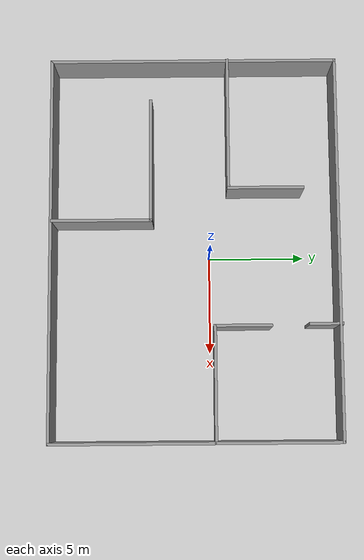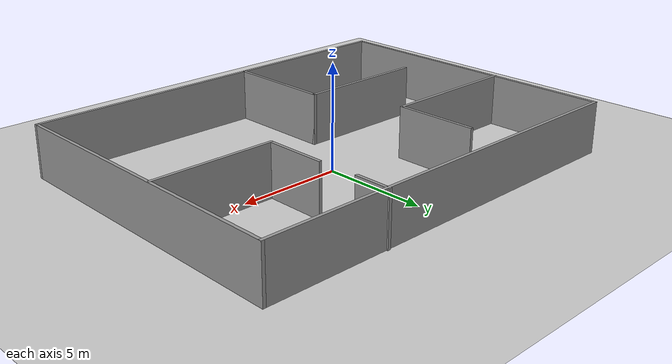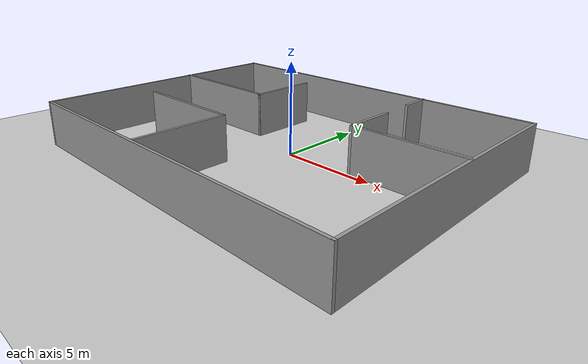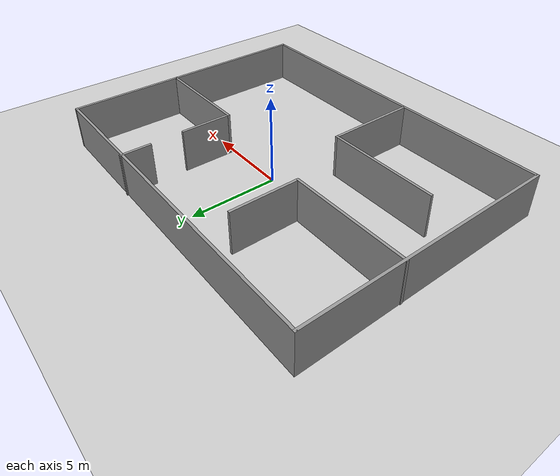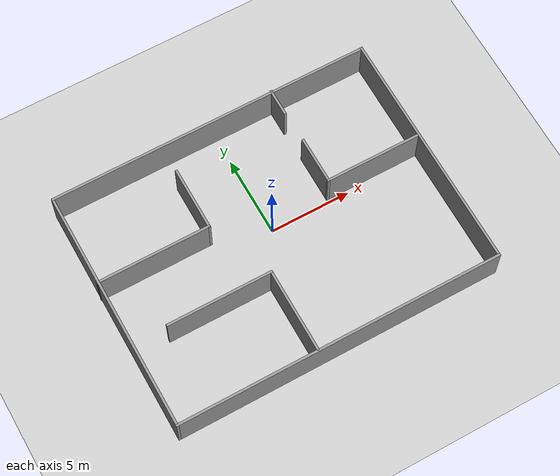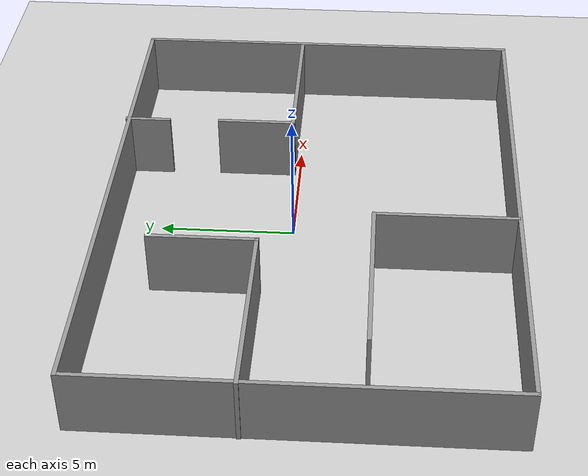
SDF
<sdf version="1.7">
 <world name="default">
  <light name="sun" type="directional">
   <pose>0 0 10 0 -0 0</pose>
   <diffuse>0.8 0.8 0.8 1</diffuse>
   <specular>0.2 0.2 0.2 1</specular>
   <attenuation>
    <range>1000</range>
    <constant>0.9</constant>
    <linear>0.01</linear>
    <quadratic>0.001</quadratic>
   </attenuation>
   <direction>-0.5 0.1 -0.9</direction>
   <spot><inner_angle>0</inner_angle><outer_angle>0</outer_angle><falloff>0</falloff></spot>
  </light>
  <model name="ground_plane">
   <static>1</static>
   <link name="link">
    <collision name="collision">
     <geometry><plane><normal>0 0 1</normal><size>100 100</size></plane></geometry>
     <surface><friction><ode><mu>100</mu><mu2>50</mu2></ode></friction></surface>
    </collision>
    <visual name="visual">
     <cast_shadows>0</cast_shadows>
     <geometry><plane><normal>0 0 1</normal><size>100 100</size></plane></geometry>
     <material>
      <script><uri>file://media/materials/scripts/gazebo.material</uri><name>Gazebo/Grey</name></script>
     </material>
    </visual>
   </link>
  </model>
  <gravity>0 0 -9.8</gravity>
  <magnetic_field>6e-06 2.3e-05 -4.2e-05</magnetic_field>
  <atmosphere type="adiabatic"/>
  <physics type="ode">
   <max_step_size>0.001</max_step_size>
   <real_time_factor>1</real_time_factor>
   <real_time_update_rate>1000</real_time_update_rate>
  </physics>
  <scene><ambient>0.4 0.4 0.4 1</ambient><background>0.7 0.7 0.7 1</background><shadows>1</shadows></scene>
  <audio><device>default</device></audio>
  <spherical_coordinates>
   <surface_model>EARTH_WGS84</surface_model>
   <latitude_deg>0</latitude_deg>
   <longitude_deg>0</longitude_deg>
   <elevation>0</elevation>
   <heading_deg>0</heading_deg>
  </spherical_coordinates>
  <model name="model">
   <pose>-0.321326 -0.743804 0 0 -0 0</pose>
   <link name="Wall_16">
    <collision name="Wall_16_Collision">
     <geometry><box><size>20 0.15 2.5</size></box></geometry>
     <pose>0 0 1.25 0 -0 0</pose>
    </collision>
    <visual name="Wall_16_Visual">
     <pose>0 0 1.25 0 -0 0</pose>
     <geometry><box><size>20 0.15 2.5</size></box></geometry>
     <material>
      <script><uri>file://media/materials/scripts/gazebo.material</uri><name>Gazebo/Grey</name></script>
      <ambient>1 1 1 1</ambient>
     </material>
     <meta><layer>0</layer></meta>
    </visual>
    <pose>0.017228 7.39371 0 0 -0 4e-06</pose>
   </link>
   <link name="Wall_17">
    <collision name="Wall_17_Collision">
     <geometry><box><size>15 0.15 2.5</size></box></geometry>
     <pose>0 0 1.25 0 -0 0</pose>
    </collision>
    <visual name="Wall_17_Visual">
     <pose>0 0 1.25 0 -0 0</pose>
     <geometry><box><size>15 0.15 2.5</size></box></geometry>
     <material>
      <script><uri>file://media/materials/scripts/gazebo.material</uri><name>Gazebo/Grey</name></script>
      <ambient>1 1 1 1</ambient>
     </material>
     <meta><layer>0</layer></meta>
    </visual>
    <pose>9.94228 -0.031247 0 0 -0 -1.5708</pose>
   </link>
   <link name="Wall_19">
    <collision name="Wall_19_Collision">
     <geometry><box><size>20 0.15 2.5</size></box></geometry>
     <pose>0 0 1.25 0 -0 0</pose>
    </collision>
    <visual name="Wall_19_Visual">
     <pose>0 0 1.25 0 -0 0</pose>
     <geometry><box><size>20 0.15 2.5</size></box></geometry>
     <material>
      <script><uri>file://media/materials/scripts/gazebo.material</uri><name>Gazebo/Grey</name></script>
      <ambient>1 1 1 1</ambient>
     </material>
     <meta><layer>0</layer></meta>
    </visual>
    <pose>0.017281 -7.45625 0 0 -0 3.14159</pose>
   </link>
   <link name="Wall_20">
    <collision name="Wall_20_Collision">
     <geometry><box><size>14.9999 0.15 2.5</size></box></geometry>
     <pose>0 0 1.25 0 -0 0</pose>
    </collision>
    <visual name="Wall_20_Visual">
     <pose>0 0 1.25 0 -0 0</pose>
     <geometry><box><size>14.9999 0.15 2.5</size></box></geometry>
     <material>
      <script><uri>file://media/materials/scripts/gazebo.material</uri><name>Gazebo/Grey</name></script>
      <ambient>1 1 1 1</ambient>
     </material>
     <meta><layer>0</layer></meta>
    </visual>
    <pose>-9.90777 -0.031286 0 0 -0 1.5708</pose>
   </link>
   <link name="Wall_23">
    <collision name="Wall_23_Collision">
     <geometry><box><size>7 0.15 2.5</size></box></geometry>
     <pose>0 0 1.25 0 -0 0</pose>
    </collision>
    <visual name="Wall_23_Visual">
     <pose>0 0 1.25 0 -0 0</pose>
     <geometry><box><size>7 0.15 2.5</size></box></geometry>
     <material>
      <script><uri>file://media/materials/scripts/gazebo.material</uri><name>Gazebo/Grey</name></script>
      <ambient>1 1 1 1</ambient>
     </material>
     <meta><layer>0</layer></meta>
    </visual>
    <pose>-6.51728 1.74902 0 0 -0 0</pose>
   </link>
   <link name="Wall_24">
    <collision name="Wall_24_Collision">
     <geometry><box><size>4 0.15 2.5</size></box></geometry>
     <pose>0 0 1.25 0 -0 0</pose>
    </collision>
    <visual name="Wall_24_Visual">
     <pose>0 0 1.25 0 -0 0</pose>
     <geometry><box><size>4 0.15 2.5</size></box></geometry>
     <material>
      <script><uri>file://media/materials/scripts/gazebo.material</uri><name>Gazebo/Grey</name></script>
      <ambient>1 1 1 1</ambient>
     </material>
     <meta><layer>0</layer></meta>
    </visual>
    <pose>-3.09228 3.67402 0 0 -0 1.5708</pose>
   </link>
   <link name="Wall_26">
    <collision name="Wall_26_Collision">
     <geometry><box><size>5.25 0.15 2.5</size></box></geometry>
     <pose>0 0 1.25 0 -0 0</pose>
    </collision>
    <visual name="Wall_26_Visual">
     <pose>0 0 1.25 0 -0 0</pose>
     <geometry><box><size>5.25 0.15 2.5</size></box></geometry>
     <material>
      <script><uri>file://media/materials/scripts/gazebo.material</uri><name>Gazebo/Grey</name></script>
      <ambient>1 1 1 1</ambient>
     </material>
     <meta><layer>0</layer></meta>
    </visual>
    <pose>-1.41491 -4.8295 0 0 -0 1.5708</pose>
   </link>
   <link name="Wall_27">
    <collision name="Wall_27_Collision">
     <geometry><box><size>6.5 0.15 2.5</size></box></geometry>
     <pose>0 0 1.25 0 -0 0</pose>
    </collision>
    <visual name="Wall_27_Visual">
     <pose>0 0 1.25 0 -0 0</pose>
     <geometry><box><size>6.5 0.15 2.5</size></box></geometry>
     <material>
      <script><uri>file://media/materials/scripts/gazebo.material</uri><name>Gazebo/Grey</name></script>
      <ambient>1 1 1 1</ambient>
     </material>
     <meta><layer>0</layer></meta>
    </visual>
    <pose>-4.58992 -2.2795 0 0 -0 3.14159</pose>
   </link>
   <link name="Wall_29">
    <collision name="Wall_29_Collision">
     <geometry><box><size>6 0.15 2.5</size></box></geometry>
     <pose>0 0 1.25 0 -0 0</pose>
    </collision>
    <visual name="Wall_29_Visual">
     <pose>0 0 1.25 0 -0 0</pose>
     <geometry><box><size>6 0.15 2.5</size></box></geometry>
     <material>
      <script><uri>file://media/materials/scripts/gazebo.material</uri><name>Gazebo/Grey</name></script>
      <ambient>1 1 1 1</ambient>
     </material>
     <meta><layer>0</layer></meta>
    </visual>
    <pose>6.97515 0.990149 0 0 -0 3.14159</pose>
   </link>
   <link name="Wall_30">
    <collision name="Wall_30_Collision">
     <geometry><box><size>3 0.15 2.5</size></box></geometry>
     <pose>0 0 1.25 0 -0 0</pose>
    </collision>
    <visual name="Wall_30_Visual">
     <pose>0 0 1.25 0 -0 0</pose>
     <geometry><box><size>3 0.15 2.5</size></box></geometry>
     <material>
      <script><uri>file://media/materials/scripts/gazebo.material</uri><name>Gazebo/Grey</name></script>
      <ambient>1 1 1 1</ambient>
     </material>
     <meta><layer>0</layer></meta>
    </visual>
    <pose>4.05015 2.41515 0 0 -0 1.5708</pose>
   </link>
   <link name="Wall_32">
    <collision name="Wall_32_Collision">
     <geometry><box><size>1.75 0.15 2.5</size></box></geometry>
     <pose>0 0 1.25 0 -0 0</pose>
    </collision>
    <visual name="Wall_32_Visual">
     <pose>0 0 1.25 0 -0 0</pose>
     <geometry><box><size>1.75 0.15 2.5</size></box></geometry>
     <material>
      <script><uri>file://media/materials/scripts/gazebo.material</uri><name>Gazebo/Grey</name></script>
      <ambient>1 1 1 1</ambient>
     </material>
     <meta><layer>0</layer></meta>
    </visual>
    <pose>3.99046 6.65625 0 0 -0 -1.5708</pose>
   </link>
   <static>1</static>
  </model>
 </world>
</sdf>
